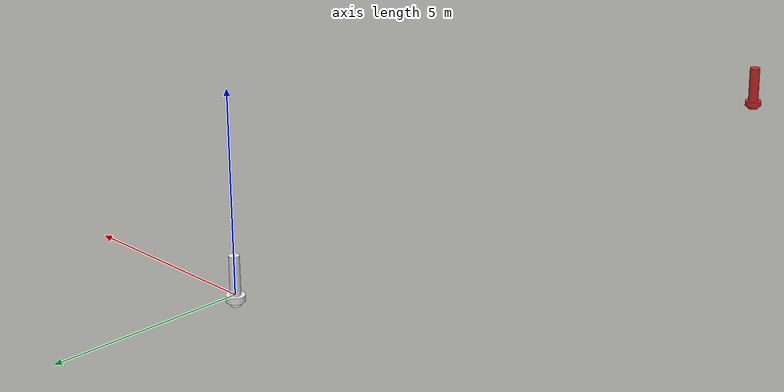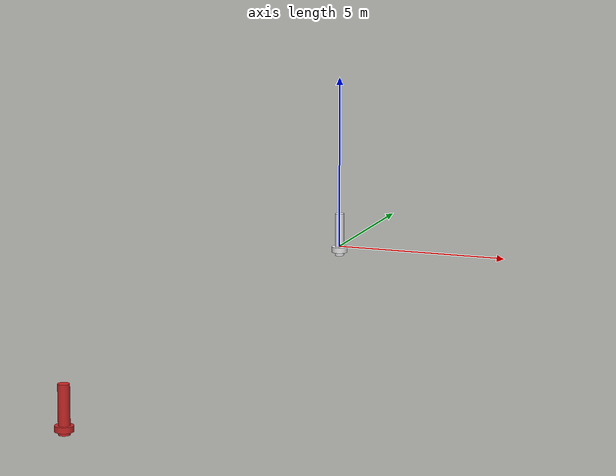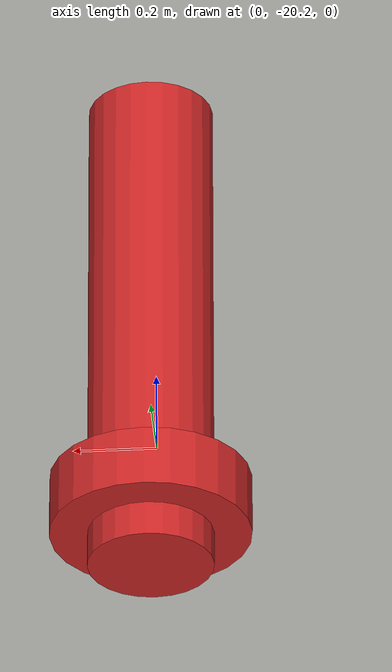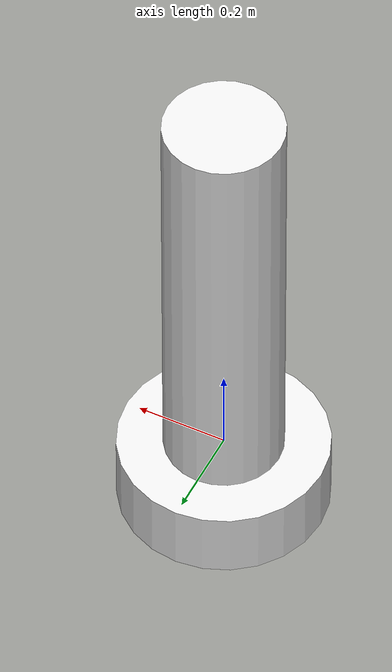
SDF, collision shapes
<?xml version="1.0"?>
<!-- Model for the short navigation course -->
<sdf version="1.6">
  <model name="exit_gates_0">

    <!-- Left_border -->
    <include>
      <name>blue_bound_0</name>
      <pose>0 0 0 0 0 0</pose>
      <uri>model://blue_totem</uri>
    </include>

    <!-- Right_boarder -->
    <include>
      <name>red_bound_0</name>
      <pose>0 -20 0.2 0 0 0</pose>
      <uri>model://surmark950410</uri>
    </include>

  </model>

</sdf>

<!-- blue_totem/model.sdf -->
<sdf version="1.6">
  <model name="blue_totem">
    <link name="link">
      <inertial>
        <pose>0 0 -2 0 0 0</pose>
        <!-- Mass determined based on buoyancy geometry so object
             floats at mid-point of sphere -->
        <mass>25</mass>
        <!-- Mark only - based on cylinder -->
        <inertia>
          <ixx>1.0</ixx>
          <ixy>0</ixy>
          <ixz>0</ixz>
          <iyy>1.0</iyy>
          <iyz>0</iyz>
          <izz>0.1</izz>
        </inertia>
      </inertial>
      <collision name="collision_inner">
        <pose>0 0 0.367 0 0 0</pose>
        <geometry>
          <cylinder>
            <radius>0.13</radius>
            <length>1.25</length>
          </cylinder>
        </geometry>
      </collision>
      <collision name="collision_outer">
        <pose>0 0 -0.075 0 0 0</pose>
        <geometry>
          <cylinder>
            <radius>0.23</radius>
            <length>0.16</length>
          </cylinder>
        </geometry>
      </collision>
      <visual name="visual">
        <geometry>
          <mesh><uri>model://surmark46104/mesh/surmark46104.dae</uri></mesh>
        </geometry>
        <material>
          <script>
            <uri>file://media/materials/scripts/gazebo.material</uri>
            <name>Gazebo/White</name>
          </script>
        </material>
      </visual>
      <visual name="cover_visual">
        <pose>0 0 0.492 0 0 0</pose>
        <geometry>
          <cylinder>
            <radius>0.131</radius>
            <length>1</length>
          </cylinder>
        </geometry>
        <material>
          <script>
            <uri>file://media/materials/scripts/gazebo.material</uri>
            <name>Gazebo/Blue</name>
          </script>
        </material>
      </visual>
    </link>
    <plugin name="BuoyancyPlugin" filename="libbuoyancy_gazebo_plugin.so">
      <wave_model>ocean_waves</wave_model>
      <fluid_density>1000</fluid_density>
      <fluid_level>0.0</fluid_level>
      <linear_drag>25.0</linear_drag>
      <angular_drag>2.0</angular_drag>
      <buoyancy name="buoyancy_sphere">
        <link_name>link</link_name>
        <pose>0 0 -0.08 0 0 0</pose>
        <geometry>
          <sphere>
            <radius>0.23</radius>
          </sphere>
        </geometry>
      </buoyancy>
    </plugin>
  </model>
</sdf>

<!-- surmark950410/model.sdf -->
<sdf version="1.6">
  <model name="surmark950410">
    <link name="link">
      <inertial>
        <pose>0 0 -2 0 0 0</pose>
        <!-- Mass determined based on buoyancy geometry so object
             floats at mid-point of sphere -->
        <mass>25</mass>
        <!-- Mark only - based on cylinder -->
        <inertia>
          <ixx>1.0</ixx>
          <ixy>0</ixy>
          <ixz>0</ixz>
          <iyy>1.0</iyy>
          <iyz>0</iyz>
          <izz>0.1</izz>
        </inertia>
      </inertial>
      <collision name="collision_inner">
        <pose>0 0 -0.01 0 0 0</pose>
        <geometry>
          <cylinder>
            <radius>0.15</radius>
            <length>1.26</length>
          </cylinder>
        </geometry>
      </collision>
      <collision name="collision_outer">
        <pose>0 0 -0.48 0 0 0</pose>
        <geometry>
          <cylinder>
            <radius>0.24</radius>
            <length>0.15</length>
          </cylinder>
        </geometry>
      </collision>
      <visual name="visual">
        <geometry>
	        <mesh><uri>model://surmark950410/mesh/surmark950410.dae</uri></mesh>
        </geometry>
        <material>
          <script>
            <uri>model://surmark950410/materials/scripts/surmark950410.material</uri>
            <name>surmark950410/Red</name>
          </script>
        </material>
      </visual>
    </link>

    <plugin name="BuoyancyPlugin" filename="libbuoyancy_gazebo_plugin.so">
      <wave_model>ocean_waves</wave_model>
      <fluid_density>1000</fluid_density>
      <fluid_level>0.0</fluid_level>
      <linear_drag>25.0</linear_drag>
      <angular_drag>2.0</angular_drag>
      <buoyancy name="buoyancy_sphere">
        <link_name>link</link_name>
        <pose>0 0 -0.48 0 0 0</pose>
        <geometry>
          <sphere>
            <radius>0.23</radius>
          </sphere>
        </geometry>
      </buoyancy>
    </plugin>

  </model>
</sdf>
